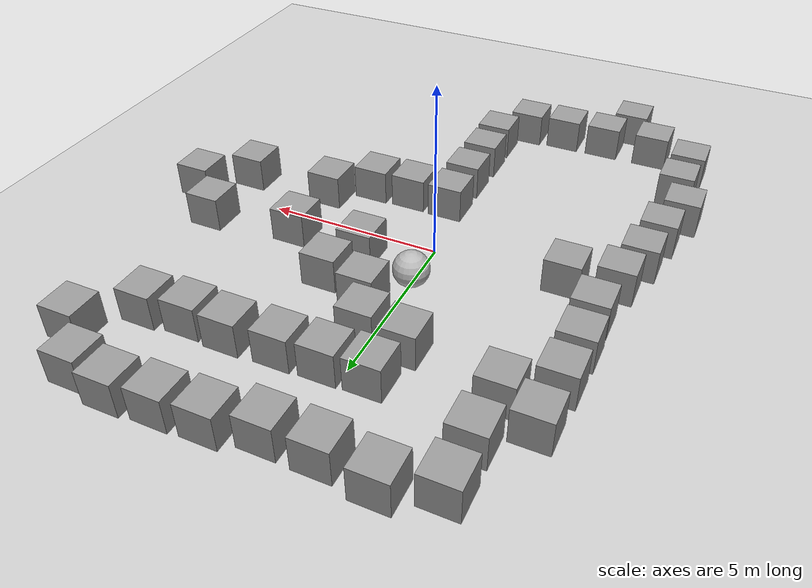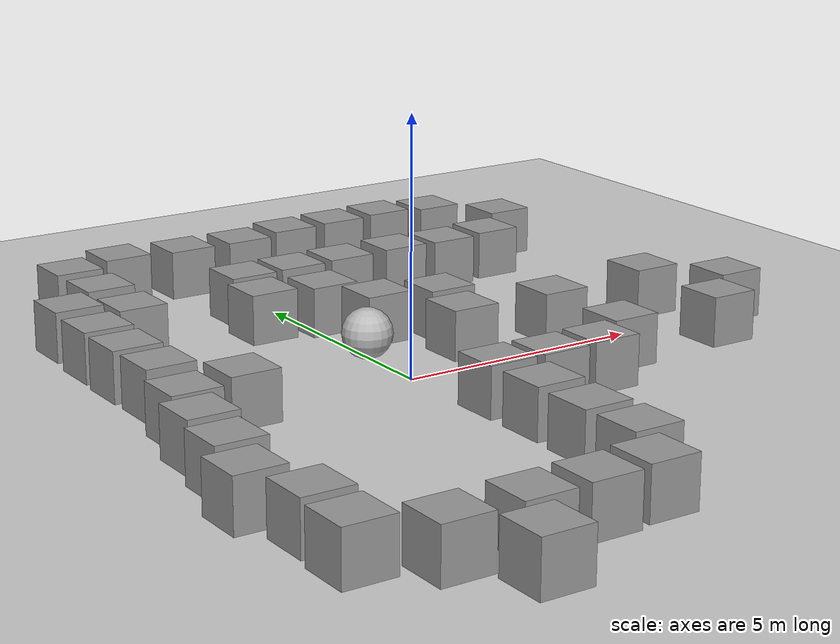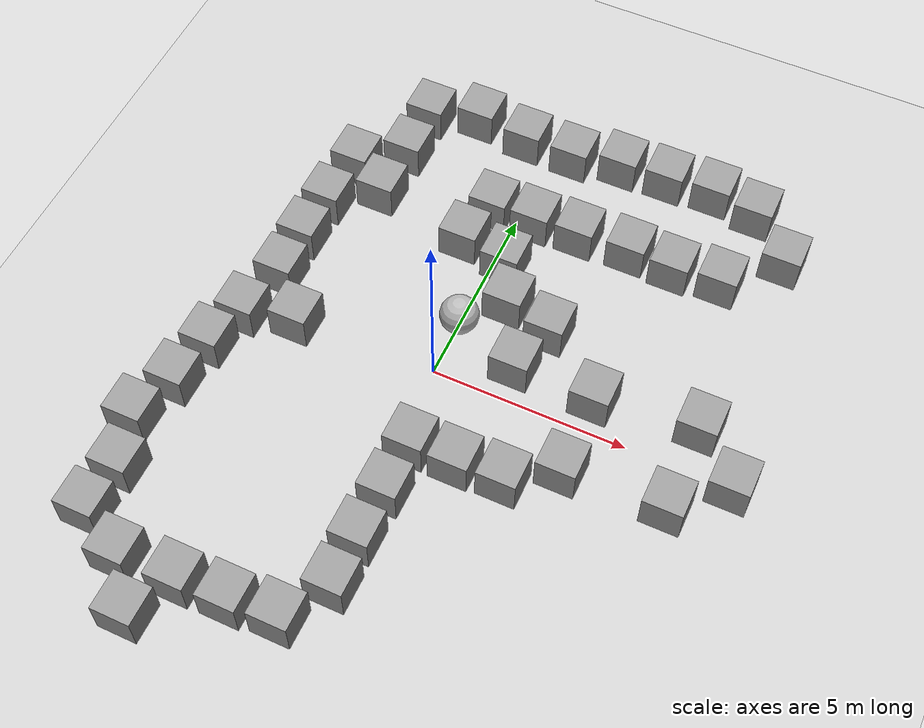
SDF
<sdf version="1.6">
 <world name="default">
  <light name="sun" type="directional">
   <pose>0 0 10 0 -0 0</pose>
   <diffuse>0.8 0.8 0.8 1</diffuse>
   <specular>0.1 0.1 0.1 1</specular>
   <attenuation>
    <range>1000</range>
    <constant>0.9</constant>
    <linear>0.01</linear>
    <quadratic>0.001</quadratic>
   </attenuation>
   <direction>-0.5 0.5 -1</direction>
  </light>
  <model name="ground_plane">
   <static>1</static>
   <link name="link">
    <collision name="collision">
     <geometry><plane><normal>0 0 1</normal><size>100 100</size></plane></geometry>
     <surface><friction><ode><mu>100</mu><mu2>50</mu2></ode></friction></surface>
    </collision>
    <visual name="visual">
     <cast_shadows>0</cast_shadows>
     <geometry><plane><normal>0 0 1</normal><size>100 100</size></plane></geometry>
     <material>
      <script><uri>file://media/materials/scripts/gazebo.material</uri><name>Gazebo/Grey</name></script>
     </material>
    </visual>
   </link>
  </model>
  <model name="sphere">
   <pose>0 1.5 0.5 0 -0 0</pose>
   <link name="link">
    <collision name="collision"><geometry><sphere><radius>0.5</radius></sphere></geometry></collision>
    <visual name="visual">
     <geometry><sphere><radius>0.5</radius></sphere></geometry>
     <material><script><uri>__default__</uri><name>__default__</name></script></material>
    </visual>
    <audio_source>
     <uri>file://media/audio/cheer.wav</uri>
     <pitch>2</pitch>
     <gain>1</gain>
     <loop>0</loop>
     <contact><collision>collision</collision></contact>
    </audio_source>
    <inertial>
     <inertia><ixx>1</ixx><ixy>0</ixy><ixz>0</ixz><iyy>1</iyy><iyz>0</iyz><izz>1</izz></inertia>
     <mass>1</mass>
    </inertial>
   </link>
  </model>
  <gravity>0 0 -9.8</gravity>
  <magnetic_field>6e-06 2.3e-05 -4.2e-05</magnetic_field>
  <atmosphere type="adiabatic"/>
  <physics name="default_physics" default="0" type="ode">
   <max_step_size>0.001</max_step_size>
   <real_time_factor>1</real_time_factor>
   <real_time_update_rate>1000</real_time_update_rate>
  </physics>
  <scene><ambient>0.4 0.4 0.4 1</ambient><background>0.7 0.7 0.7 1</background><shadows>1</shadows></scene>
  <spherical_coordinates>
   <surface_model>EARTH_WGS84</surface_model>
   <latitude_deg>0</latitude_deg>
   <longitude_deg>0</longitude_deg>
   <elevation>0</elevation>
   <heading_deg>0</heading_deg>
  </spherical_coordinates>
  <model name="unit_box_0">
   <pose>0.423218 -2.11076 0.499995 -1e-05 0 0</pose>
   <link name="link">
    <inertial>
     <mass>1</mass>
     <inertia>
      <ixx>0.166667</ixx>
      <ixy>0</ixy>
      <ixz>0</ixz>
      <iyy>0.166667</iyy>
      <iyz>0</iyz>
      <izz>0.166667</izz>
     </inertia>
    </inertial>
    <collision name="collision"><geometry><box><size>1 1 1</size></box></geometry></collision>
    <visual name="visual">
     <geometry><box><size>1 1 1</size></box></geometry>
     <material>
      <script><name>Gazebo/Grey</name><uri>file://media/materials/scripts/gazebo.material</uri></script>
     </material>
    </visual>
   </link>
  </model>
  <model name="unit_box_1">
   <pose>1.58403 -2.13008 0.499995 0 1e-05 0</pose>
   <link name="link">
    <inertial>
     <mass>1</mass>
     <inertia>
      <ixx>0.166667</ixx>
      <ixy>0</ixy>
      <ixz>0</ixz>
      <iyy>0.166667</iyy>
      <iyz>0</iyz>
      <izz>0.166667</izz>
     </inertia>
    </inertial>
    <collision name="collision"><geometry><box><size>1 1 1</size></box></geometry></collision>
    <visual name="visual">
     <geometry><box><size>1 1 1</size></box></geometry>
     <material>
      <script><name>Gazebo/Grey</name><uri>file://media/materials/scripts/gazebo.material</uri></script>
     </material>
    </visual>
   </link>
  </model>
  <model name="unit_box_2">
   <pose>2.77073 -2.0773 0.499995 -1e-05 0 0</pose>
   <link name="link">
    <inertial>
     <mass>1</mass>
     <inertia>
      <ixx>0.166667</ixx>
      <ixy>0</ixy>
      <ixz>0</ixz>
      <iyy>0.166667</iyy>
      <iyz>0</iyz>
      <izz>0.166667</izz>
     </inertia>
    </inertial>
    <collision name="collision"><geometry><box><size>1 1 1</size></box></geometry></collision>
    <visual name="visual">
     <geometry><box><size>1 1 1</size></box></geometry>
     <material>
      <script><name>Gazebo/Grey</name><uri>file://media/materials/scripts/gazebo.material</uri></script>
     </material>
    </visual>
   </link>
  </model>
  <model name="unit_box_3">
   <pose>3.89355 -1.26353 0.499995 0 1e-05 0</pose>
   <link name="link">
    <inertial>
     <mass>1</mass>
     <inertia>
      <ixx>0.166667</ixx>
      <ixy>0</ixy>
      <ixz>0</ixz>
      <iyy>0.166667</iyy>
      <iyz>0</iyz>
      <izz>0.166667</izz>
     </inertia>
    </inertial>
    <collision name="collision"><geometry><box><size>1 1 1</size></box></geometry></collision>
    <visual name="visual">
     <geometry><box><size>1 1 1</size></box></geometry>
     <material>
      <script><name>Gazebo/Grey</name><uri>file://media/materials/scripts/gazebo.material</uri></script>
     </material>
    </visual>
   </link>
  </model>
  <model name="unit_box_4">
   <pose>3.8597 0.814133 0.499995 -1e-05 0 0</pose>
   <link name="link">
    <inertial>
     <mass>1</mass>
     <inertia>
      <ixx>0.166667</ixx>
      <ixy>0</ixy>
      <ixz>0</ixz>
      <iyy>0.166667</iyy>
      <iyz>0</iyz>
      <izz>0.166667</izz>
     </inertia>
    </inertial>
    <collision name="collision"><geometry><box><size>1 1 1</size></box></geometry></collision>
    <visual name="visual">
     <geometry><box><size>1 1 1</size></box></geometry>
     <material>
      <script><name>Gazebo/Grey</name><uri>file://media/materials/scripts/gazebo.material</uri></script>
     </material>
    </visual>
   </link>
  </model>
  <model name="unit_box_5">
   <pose>1.76174 0.888922 0.499995 0 1e-05 0</pose>
   <link name="link">
    <inertial>
     <mass>1</mass>
     <inertia>
      <ixx>0.166667</ixx>
      <ixy>0</ixy>
      <ixz>0</ixz>
      <iyy>0.166667</iyy>
      <iyz>0</iyz>
      <izz>0.166667</izz>
     </inertia>
    </inertial>
    <collision name="collision"><geometry><box><size>1 1 1</size></box></geometry></collision>
    <visual name="visual">
     <geometry><box><size>1 1 1</size></box></geometry>
     <material>
      <script><name>Gazebo/Grey</name><uri>file://media/materials/scripts/gazebo.material</uri></script>
     </material>
    </visual>
   </link>
  </model>
  <model name="unit_box_6">
   <pose>0.872848 2.51326 0.499995 -1e-05 0 0</pose>
   <link name="link">
    <inertial>
     <mass>1</mass>
     <inertia>
      <ixx>0.166667</ixx>
      <ixy>0</ixy>
      <ixz>0</ixz>
      <iyy>0.166667</iyy>
      <iyz>0</iyz>
      <izz>0.166667</izz>
     </inertia>
    </inertial>
    <collision name="collision"><geometry><box><size>1 1 1</size></box></geometry></collision>
    <visual name="visual">
     <geometry><box><size>1 1 1</size></box></geometry>
     <material>
      <script><name>Gazebo/Grey</name><uri>file://media/materials/scripts/gazebo.material</uri></script>
     </material>
    </visual>
   </link>
  </model>
  <model name="unit_box_7">
   <pose>2.11942 2.17671 0.499995 0 1e-05 0</pose>
   <link name="link">
    <inertial>
     <mass>1</mass>
     <inertia>
      <ixx>0.166667</ixx>
      <ixy>0</ixy>
      <ixz>0</ixz>
      <iyy>0.166667</iyy>
      <iyz>0</iyz>
      <izz>0.166667</izz>
     </inertia>
    </inertial>
    <collision name="collision"><geometry><box><size>1 1 1</size></box></geometry></collision>
    <visual name="visual">
     <geometry><box><size>1 1 1</size></box></geometry>
     <material>
      <script><name>Gazebo/Grey</name><uri>file://media/materials/scripts/gazebo.material</uri></script>
     </material>
    </visual>
   </link>
  </model>
  <model name="unit_box_8">
   <pose>0.429041 -3.44681 0.499995 -1e-05 0 0</pose>
   <link name="link">
    <inertial>
     <mass>1</mass>
     <inertia>
      <ixx>0.166667</ixx>
      <ixy>0</ixy>
      <ixz>0</ixz>
      <iyy>0.166667</iyy>
      <iyz>0</iyz>
      <izz>0.166667</izz>
     </inertia>
    </inertial>
    <collision name="collision"><geometry><box><size>1 1 1</size></box></geometry></collision>
    <visual name="visual">
     <geometry><box><size>1 1 1</size></box></geometry>
     <material>
      <script><name>Gazebo/Grey</name><uri>file://media/materials/scripts/gazebo.material</uri></script>
     </material>
    </visual>
   </link>
  </model>
  <model name="unit_box_9">
   <pose>0.392445 -4.77441 0.499995 0 1e-05 0</pose>
   <link name="link">
    <inertial>
     <mass>1</mass>
     <inertia>
      <ixx>0.166667</ixx>
      <ixy>0</ixy>
      <ixz>0</ixz>
      <iyy>0.166667</iyy>
      <iyz>0</iyz>
      <izz>0.166667</izz>
     </inertia>
    </inertial>
    <collision name="collision"><geometry><box><size>1 1 1</size></box></geometry></collision>
    <visual name="visual">
     <geometry><box><size>1 1 1</size></box></geometry>
     <material>
      <script><name>Gazebo/Grey</name><uri>file://media/materials/scripts/gazebo.material</uri></script>
     </material>
    </visual>
   </link>
  </model>
  <model name="unit_box_10">
   <pose>0.411326 -6.03282 0.499995 -1e-05 0 0</pose>
   <link name="link">
    <inertial>
     <mass>1</mass>
     <inertia>
      <ixx>0.166667</ixx>
      <ixy>0</ixy>
      <ixz>0</ixz>
      <iyy>0.166667</iyy>
      <iyz>0</iyz>
      <izz>0.166667</izz>
     </inertia>
    </inertial>
    <collision name="collision"><geometry><box><size>1 1 1</size></box></geometry></collision>
    <visual name="visual">
     <geometry><box><size>1 1 1</size></box></geometry>
     <material>
      <script><name>Gazebo/Grey</name><uri>file://media/materials/scripts/gazebo.material</uri></script>
     </material>
    </visual>
   </link>
  </model>
  <model name="unit_box_11">
   <pose>-0.287675 -7.24185 0.499995 0 1e-05 0</pose>
   <link name="link">
    <inertial>
     <mass>1</mass>
     <inertia>
      <ixx>0.166667</ixx>
      <ixy>0</ixy>
      <ixz>0</ixz>
      <iyy>0.166667</iyy>
      <iyz>0</iyz>
      <izz>0.166667</izz>
     </inertia>
    </inertial>
    <collision name="collision"><geometry><box><size>1 1 1</size></box></geometry></collision>
    <visual name="visual">
     <geometry><box><size>1 1 1</size></box></geometry>
     <material>
      <script><name>Gazebo/Grey</name><uri>file://media/materials/scripts/gazebo.material</uri></script>
     </material>
    </visual>
   </link>
  </model>
  <model name="unit_box_12">
   <pose>-1.50584 -7.33763 0.499995 -1e-05 0 0</pose>
   <link name="link">
    <inertial>
     <mass>1</mass>
     <inertia>
      <ixx>0.166667</ixx>
      <ixy>0</ixy>
      <ixz>0</ixz>
      <iyy>0.166667</iyy>
      <iyz>0</iyz>
      <izz>0.166667</izz>
     </inertia>
    </inertial>
    <collision name="collision"><geometry><box><size>1 1 1</size></box></geometry></collision>
    <visual name="visual">
     <geometry><box><size>1 1 1</size></box></geometry>
     <material>
      <script><name>Gazebo/Grey</name><uri>file://media/materials/scripts/gazebo.material</uri></script>
     </material>
    </visual>
   </link>
  </model>
  <model name="unit_box_13">
   <pose>-2.78147 -7.37543 0.499995 0 1e-05 0</pose>
   <link name="link">
    <inertial>
     <mass>1</mass>
     <inertia>
      <ixx>0.166667</ixx>
      <ixy>0</ixy>
      <ixz>0</ixz>
      <iyy>0.166667</iyy>
      <iyz>0</iyz>
      <izz>0.166667</izz>
     </inertia>
    </inertial>
    <collision name="collision"><geometry><box><size>1 1 1</size></box></geometry></collision>
    <visual name="visual">
     <geometry><box><size>1 1 1</size></box></geometry>
     <material>
      <script><name>Gazebo/Grey</name><uri>file://media/materials/scripts/gazebo.material</uri></script>
     </material>
    </visual>
   </link>
  </model>
  <model name="unit_box_14">
   <pose>-4.29115 -7.40759 0.499995 -1e-05 0 0</pose>
   <link name="link">
    <inertial>
     <mass>1</mass>
     <inertia>
      <ixx>0.166667</ixx>
      <ixy>0</ixy>
      <ixz>0</ixz>
      <iyy>0.166667</iyy>
      <iyz>0</iyz>
      <izz>0.166667</izz>
     </inertia>
    </inertial>
    <collision name="collision"><geometry><box><size>1 1 1</size></box></geometry></collision>
    <visual name="visual">
     <geometry><box><size>1 1 1</size></box></geometry>
     <material>
      <script><name>Gazebo/Grey</name><uri>file://media/materials/scripts/gazebo.material</uri></script>
     </material>
    </visual>
   </link>
  </model>
  <model name="unit_box_15">
   <pose>-5.52346 -6.71404 0.499995 0 1e-05 0</pose>
   <link name="link">
    <inertial>
     <mass>1</mass>
     <inertia>
      <ixx>0.166667</ixx>
      <ixy>0</ixy>
      <ixz>0</ixz>
      <iyy>0.166667</iyy>
      <iyz>0</iyz>
      <izz>0.166667</izz>
     </inertia>
    </inertial>
    <collision name="collision"><geometry><box><size>1 1 1</size></box></geometry></collision>
    <visual name="visual">
     <geometry><box><size>1 1 1</size></box></geometry>
     <material>
      <script><name>Gazebo/Grey</name><uri>file://media/materials/scripts/gazebo.material</uri></script>
     </material>
    </visual>
   </link>
  </model>
  <model name="unit_box_16">
   <pose>-3.37503 -8.54566 0.499995 -1e-05 0 0</pose>
   <link name="link">
    <inertial>
     <mass>1</mass>
     <inertia>
      <ixx>0.166667</ixx>
      <ixy>0</ixy>
      <ixz>0</ixz>
      <iyy>0.166667</iyy>
      <iyz>0</iyz>
      <izz>0.166667</izz>
     </inertia>
    </inertial>
    <collision name="collision"><geometry><box><size>1 1 1</size></box></geometry></collision>
    <visual name="visual">
     <geometry><box><size>1 1 1</size></box></geometry>
     <material>
      <script><name>Gazebo/Grey</name><uri>file://media/materials/scripts/gazebo.material</uri></script>
     </material>
    </visual>
   </link>
  </model>
  <model name="unit_box_17">
   <pose>-5.44008 -5.45541 0.499995 0 1e-05 0</pose>
   <link name="link">
    <inertial>
     <mass>1</mass>
     <inertia>
      <ixx>0.166667</ixx>
      <ixy>0</ixy>
      <ixz>0</ixz>
      <iyy>0.166667</iyy>
      <iyz>0</iyz>
      <izz>0.166667</izz>
     </inertia>
    </inertial>
    <collision name="collision"><geometry><box><size>1 1 1</size></box></geometry></collision>
    <visual name="visual">
     <geometry><box><size>1 1 1</size></box></geometry>
     <material>
      <script><name>Gazebo/Grey</name><uri>file://media/materials/scripts/gazebo.material</uri></script>
     </material>
    </visual>
   </link>
  </model>
  <model name="unit_box_18">
   <pose>-5.8446 -4.15547 0.499995 -1e-05 0 0</pose>
   <link name="link">
    <inertial>
     <mass>1</mass>
     <inertia>
      <ixx>0.166667</ixx>
      <ixy>0</ixy>
      <ixz>0</ixz>
      <iyy>0.166667</iyy>
      <iyz>0</iyz>
      <izz>0.166667</izz>
     </inertia>
    </inertial>
    <collision name="collision"><geometry><box><size>1 1 1</size></box></geometry></collision>
    <visual name="visual">
     <geometry><box><size>1 1 1</size></box></geometry>
     <material>
      <script><name>Gazebo/Grey</name><uri>file://media/materials/scripts/gazebo.material</uri></script>
     </material>
    </visual>
   </link>
  </model>
  <model name="unit_box_19">
   <pose>-5.47058 -2.9045 0.499995 0 1e-05 0</pose>
   <link name="link">
    <inertial>
     <mass>1</mass>
     <inertia>
      <ixx>0.166667</ixx>
      <ixy>0</ixy>
      <ixz>0</ixz>
      <iyy>0.166667</iyy>
      <iyz>0</iyz>
      <izz>0.166667</izz>
     </inertia>
    </inertial>
    <collision name="collision"><geometry><box><size>1 1 1</size></box></geometry></collision>
    <visual name="visual">
     <geometry><box><size>1 1 1</size></box></geometry>
     <material>
      <script><name>Gazebo/Grey</name><uri>file://media/materials/scripts/gazebo.material</uri></script>
     </material>
    </visual>
   </link>
  </model>
  <model name="unit_box_20">
   <pose>-5.26826 -1.62834 0.499995 -1e-05 0 0</pose>
   <link name="link">
    <inertial>
     <mass>1</mass>
     <inertia>
      <ixx>0.166667</ixx>
      <ixy>0</ixy>
      <ixz>0</ixz>
      <iyy>0.166667</iyy>
      <iyz>0</iyz>
      <izz>0.166667</izz>
     </inertia>
    </inertial>
    <collision name="collision"><geometry><box><size>1 1 1</size></box></geometry></collision>
    <visual name="visual">
     <geometry><box><size>1 1 1</size></box></geometry>
     <material>
      <script><name>Gazebo/Grey</name><uri>file://media/materials/scripts/gazebo.material</uri></script>
     </material>
    </visual>
   </link>
  </model>
  <model name="unit_box_21">
   <pose>-4.94876 -0.47285 0.499995 0 1e-05 0</pose>
   <link name="link">
    <inertial>
     <mass>1</mass>
     <inertia>
      <ixx>0.166667</ixx>
      <ixy>0</ixy>
      <ixz>0</ixz>
      <iyy>0.166667</iyy>
      <iyz>0</iyz>
      <izz>0.166667</izz>
     </inertia>
    </inertial>
    <collision name="collision"><geometry><box><size>1 1 1</size></box></geometry></collision>
    <visual name="visual">
     <geometry><box><size>1 1 1</size></box></geometry>
     <material>
      <script><name>Gazebo/Grey</name><uri>file://media/materials/scripts/gazebo.material</uri></script>
     </material>
    </visual>
   </link>
  </model>
  <model name="unit_box_22">
   <pose>-4.67844 0.993727 0.499995 -1e-05 0 0</pose>
   <link name="link">
    <inertial>
     <mass>1</mass>
     <inertia>
      <ixx>0.166667</ixx>
      <ixy>0</ixy>
      <ixz>0</ixz>
      <iyy>0.166667</iyy>
      <iyz>0</iyz>
      <izz>0.166667</izz>
     </inertia>
    </inertial>
    <collision name="collision"><geometry><box><size>1 1 1</size></box></geometry></collision>
    <visual name="visual">
     <geometry><box><size>1 1 1</size></box></geometry>
     <material>
      <script><name>Gazebo/Grey</name><uri>file://media/materials/scripts/gazebo.material</uri></script>
     </material>
    </visual>
   </link>
  </model>
  <model name="unit_box_23">
   <pose>-3.64084 -0.160311 0.499995 0 1e-05 0</pose>
   <link name="link">
    <inertial>
     <mass>1</mass>
     <inertia>
      <ixx>0.166667</ixx>
      <ixy>0</ixy>
      <ixz>0</ixz>
      <iyy>0.166667</iyy>
      <iyz>0</iyz>
      <izz>0.166667</izz>
     </inertia>
    </inertial>
    <collision name="collision"><geometry><box><size>1 1 1</size></box></geometry></collision>
    <visual name="visual">
     <geometry><box><size>1 1 1</size></box></geometry>
     <material>
      <script><name>Gazebo/Grey</name><uri>file://media/materials/scripts/gazebo.material</uri></script>
     </material>
    </visual>
   </link>
  </model>
  <model name="unit_box_24">
   <pose>-4.70097 2.24169 0.499995 -1e-05 0 0</pose>
   <link name="link">
    <inertial>
     <mass>1</mass>
     <inertia>
      <ixx>0.166667</ixx>
      <ixy>0</ixy>
      <ixz>0</ixz>
      <iyy>0.166667</iyy>
      <iyz>0</iyz>
      <izz>0.166667</izz>
     </inertia>
    </inertial>
    <collision name="collision"><geometry><box><size>1 1 1</size></box></geometry></collision>
    <visual name="visual">
     <geometry><box><size>1 1 1</size></box></geometry>
     <material>
      <script><name>Gazebo/Grey</name><uri>file://media/materials/scripts/gazebo.material</uri></script>
     </material>
    </visual>
   </link>
  </model>
  <model name="unit_box_25">
   <pose>-4.65707 3.49912 0.499995 0 1e-05 0</pose>
   <link name="link">
    <inertial>
     <mass>1</mass>
     <inertia>
      <ixx>0.166667</ixx>
      <ixy>0</ixy>
      <ixz>0</ixz>
      <iyy>0.166667</iyy>
      <iyz>0</iyz>
      <izz>0.166667</izz>
     </inertia>
    </inertial>
    <collision name="collision"><geometry><box><size>1 1 1</size></box></geometry></collision>
    <visual name="visual">
     <geometry><box><size>1 1 1</size></box></geometry>
     <material>
      <script><name>Gazebo/Grey</name><uri>file://media/materials/scripts/gazebo.material</uri></script>
     </material>
    </visual>
   </link>
  </model>
  <model name="unit_box_26">
   <pose>-4.56874 4.939 0.499995 -1e-05 0 0</pose>
   <link name="link">
    <inertial>
     <mass>1</mass>
     <inertia>
      <ixx>0.166667</ixx>
      <ixy>0</ixy>
      <ixz>0</ixz>
      <iyy>0.166667</iyy>
      <iyz>0</iyz>
      <izz>0.166667</izz>
     </inertia>
    </inertial>
    <collision name="collision"><geometry><box><size>1 1 1</size></box></geometry></collision>
    <visual name="visual">
     <geometry><box><size>1 1 1</size></box></geometry>
     <material>
      <script><name>Gazebo/Grey</name><uri>file://media/materials/scripts/gazebo.material</uri></script>
     </material>
    </visual>
   </link>
  </model>
  <model name="unit_box_27">
   <pose>0.303105 3.62572 0.499995 0 1e-05 0</pose>
   <link name="link">
    <inertial>
     <mass>1</mass>
     <inertia>
      <ixx>0.166667</ixx>
      <ixy>0</ixy>
      <ixz>0</ixz>
      <iyy>0.166667</iyy>
      <iyz>0</iyz>
      <izz>0.166667</izz>
     </inertia>
    </inertial>
    <collision name="collision"><geometry><box><size>1 1 1</size></box></geometry></collision>
    <visual name="visual">
     <geometry><box><size>1 1 1</size></box></geometry>
     <material>
      <script><name>Gazebo/Grey</name><uri>file://media/materials/scripts/gazebo.material</uri></script>
     </material>
    </visual>
   </link>
  </model>
  <model name="unit_box_28">
   <pose>-0.678112 5.08371 0.499995 -1e-05 0 0</pose>
   <link name="link">
    <inertial>
     <mass>1</mass>
     <inertia>
      <ixx>0.166667</ixx>
      <ixy>0</ixy>
      <ixz>0</ixz>
      <iyy>0.166667</iyy>
      <iyz>0</iyz>
      <izz>0.166667</izz>
     </inertia>
    </inertial>
    <collision name="collision"><geometry><box><size>1 1 1</size></box></geometry></collision>
    <visual name="visual">
     <geometry><box><size>1 1 1</size></box></geometry>
     <material>
      <script><name>Gazebo/Grey</name><uri>file://media/materials/scripts/gazebo.material</uri></script>
     </material>
    </visual>
   </link>
  </model>
  <model name="unit_box_29">
   <pose>-0.937056 3.84797 0.499995 0 1e-05 0</pose>
   <link name="link">
    <inertial>
     <mass>1</mass>
     <inertia>
      <ixx>0.166667</ixx>
      <ixy>0</ixy>
      <ixz>0</ixz>
      <iyy>0.166667</iyy>
      <iyz>0</iyz>
      <izz>0.166667</izz>
     </inertia>
    </inertial>
    <collision name="collision"><geometry><box><size>1 1 1</size></box></geometry></collision>
    <visual name="visual">
     <geometry><box><size>1 1 1</size></box></geometry>
     <material>
      <script><name>Gazebo/Grey</name><uri>file://media/materials/scripts/gazebo.material</uri></script>
     </material>
    </visual>
   </link>
  </model>
  <model name="unit_box_30">
   <pose>-3.52272 4.34675 0.499995 -1e-05 0 0</pose>
   <link name="link">
    <inertial>
     <mass>1</mass>
     <inertia>
      <ixx>0.166667</ixx>
      <ixy>0</ixy>
      <ixz>0</ixz>
      <iyy>0.166667</iyy>
      <iyz>0</iyz>
      <izz>0.166667</izz>
     </inertia>
    </inertial>
    <collision name="collision"><geometry><box><size>1 1 1</size></box></geometry></collision>
    <visual name="visual">
     <geometry><box><size>1 1 1</size></box></geometry>
     <material>
      <script><name>Gazebo/Grey</name><uri>file://media/materials/scripts/gazebo.material</uri></script>
     </material>
    </visual>
   </link>
  </model>
  <model name="unit_box_31">
   <pose>-3.46965 5.83997 0.499995 0 1e-05 0</pose>
   <link name="link">
    <inertial>
     <mass>1</mass>
     <inertia>
      <ixx>0.166667</ixx>
      <ixy>0</ixy>
      <ixz>0</ixz>
      <iyy>0.166667</iyy>
      <iyz>0</iyz>
      <izz>0.166667</izz>
     </inertia>
    </inertial>
    <collision name="collision"><geometry><box><size>1 1 1</size></box></geometry></collision>
    <visual name="visual">
     <geometry><box><size>1 1 1</size></box></geometry>
     <material>
      <script><name>Gazebo/Grey</name><uri>file://media/materials/scripts/gazebo.material</uri></script>
     </material>
    </visual>
   </link>
  </model>
  <model name="unit_box_32">
   <pose>-3.477 7.23266 0.499995 -1e-05 0 0</pose>
   <link name="link">
    <inertial>
     <mass>1</mass>
     <inertia>
      <ixx>0.166667</ixx>
      <ixy>0</ixy>
      <ixz>0</ixz>
      <iyy>0.166667</iyy>
      <iyz>0</iyz>
      <izz>0.166667</izz>
     </inertia>
    </inertial>
    <collision name="collision"><geometry><box><size>1 1 1</size></box></geometry></collision>
    <visual name="visual">
     <geometry><box><size>1 1 1</size></box></geometry>
     <material>
      <script><name>Gazebo/Grey</name><uri>file://media/materials/scripts/gazebo.material</uri></script>
     </material>
    </visual>
   </link>
  </model>
  <model name="unit_box_33">
   <pose>-2.1864 7.67286 0.499995 0 1e-05 0</pose>
   <link name="link">
    <inertial>
     <mass>1</mass>
     <inertia>
      <ixx>0.166667</ixx>
      <ixy>0</ixy>
      <ixz>0</ixz>
      <iyy>0.166667</iyy>
      <iyz>0</iyz>
      <izz>0.166667</izz>
     </inertia>
    </inertial>
    <collision name="collision"><geometry><box><size>1 1 1</size></box></geometry></collision>
    <visual name="visual">
     <geometry><box><size>1 1 1</size></box></geometry>
     <material>
      <script><name>Gazebo/Grey</name><uri>file://media/materials/scripts/gazebo.material</uri></script>
     </material>
    </visual>
   </link>
  </model>
  <model name="unit_box_34">
   <pose>-0.77514 7.50352 0.499995 -1e-05 0 0</pose>
   <link name="link">
    <inertial>
     <mass>1</mass>
     <inertia>
      <ixx>0.166667</ixx>
      <ixy>0</ixy>
      <ixz>0</ixz>
      <iyy>0.166667</iyy>
      <iyz>0</iyz>
      <izz>0.166667</izz>
     </inertia>
    </inertial>
    <collision name="collision"><geometry><box><size>1 1 1</size></box></geometry></collision>
    <visual name="visual">
     <geometry><box><size>1 1 1</size></box></geometry>
     <material>
      <script><name>Gazebo/Grey</name><uri>file://media/materials/scripts/gazebo.material</uri></script>
     </material>
    </visual>
   </link>
  </model>
  <model name="unit_box_35">
   <pose>0.471589 5.11999 0.499995 0 1e-05 0</pose>
   <link name="link">
    <inertial>
     <mass>1</mass>
     <inertia>
      <ixx>0.166667</ixx>
      <ixy>0</ixy>
      <ixz>0</ixz>
      <iyy>0.166667</iyy>
      <iyz>0</iyz>
      <izz>0.166667</izz>
     </inertia>
    </inertial>
    <collision name="collision"><geometry><box><size>1 1 1</size></box></geometry></collision>
    <visual name="visual">
     <geometry><box><size>1 1 1</size></box></geometry>
     <material>
      <script><name>Gazebo/Grey</name><uri>file://media/materials/scripts/gazebo.material</uri></script>
     </material>
    </visual>
   </link>
  </model>
  <model name="unit_box_36">
   <pose>1.67009 5.16791 0.499995 -1e-05 0 0</pose>
   <link name="link">
    <inertial>
     <mass>1</mass>
     <inertia>
      <ixx>0.166667</ixx>
      <ixy>0</ixy>
      <ixz>0</ixz>
      <iyy>0.166667</iyy>
      <iyz>0</iyz>
      <izz>0.166667</izz>
     </inertia>
    </inertial>
    <collision name="collision"><geometry><box><size>1 1 1</size></box></geometry></collision>
    <visual name="visual">
     <geometry><box><size>1 1 1</size></box></geometry>
     <material>
      <script><name>Gazebo/Grey</name><uri>file://media/materials/scripts/gazebo.material</uri></script>
     </material>
    </visual>
   </link>
  </model>
  <model name="unit_box_37">
   <pose>3.04101 5.23144 0.499995 0 1e-05 0</pose>
   <link name="link">
    <inertial>
     <mass>1</mass>
     <inertia>
      <ixx>0.166667</ixx>
      <ixy>0</ixy>
      <ixz>0</ixz>
      <iyy>0.166667</iyy>
      <iyz>0</iyz>
      <izz>0.166667</izz>
     </inertia>
    </inertial>
    <collision name="collision"><geometry><box><size>1 1 1</size></box></geometry></collision>
    <visual name="visual">
     <geometry><box><size>1 1 1</size></box></geometry>
     <material>
      <script><name>Gazebo/Grey</name><uri>file://media/materials/scripts/gazebo.material</uri></script>
     </material>
    </visual>
   </link>
  </model>
  <model name="unit_box_38">
   <pose>4.22188 5.16401 0.499995 -1e-05 0 0</pose>
   <link name="link">
    <inertial>
     <mass>1</mass>
     <inertia>
      <ixx>0.166667</ixx>
      <ixy>0</ixy>
      <ixz>0</ixz>
      <iyy>0.166667</iyy>
      <iyz>0</iyz>
      <izz>0.166667</izz>
     </inertia>
    </inertial>
    <collision name="collision"><geometry><box><size>1 1 1</size></box></geometry></collision>
    <visual name="visual">
     <geometry><box><size>1 1 1</size></box></geometry>
     <material>
      <script><name>Gazebo/Grey</name><uri>file://media/materials/scripts/gazebo.material</uri></script>
     </material>
    </visual>
   </link>
  </model>
  <model name="unit_box_39">
   <pose>0.572491 7.4829 0.499995 0 1e-05 0</pose>
   <link name="link">
    <inertial>
     <mass>1</mass>
     <inertia>
      <ixx>0.166667</ixx>
      <ixy>0</ixy>
      <ixz>0</ixz>
      <iyy>0.166667</iyy>
      <iyz>0</iyz>
      <izz>0.166667</izz>
     </inertia>
    </inertial>
    <collision name="collision"><geometry><box><size>1 1 1</size></box></geometry></collision>
    <visual name="visual">
     <geometry><box><size>1 1 1</size></box></geometry>
     <material>
      <script><name>Gazebo/Grey</name><uri>file://media/materials/scripts/gazebo.material</uri></script>
     </material>
    </visual>
   </link>
  </model>
  <model name="unit_box_40">
   <pose>1.84705 7.74214 0.499995 -1e-05 0 0</pose>
   <link name="link">
    <inertial>
     <mass>1</mass>
     <inertia>
      <ixx>0.166667</ixx>
      <ixy>0</ixy>
      <ixz>0</ixz>
      <iyy>0.166667</iyy>
      <iyz>0</iyz>
      <izz>0.166667</izz>
     </inertia>
    </inertial>
    <collision name="collision"><geometry><box><size>1 1 1</size></box></geometry></collision>
    <visual name="visual">
     <geometry><box><size>1 1 1</size></box></geometry>
     <material>
      <script><name>Gazebo/Grey</name><uri>file://media/materials/scripts/gazebo.material</uri></script>
     </material>
    </visual>
   </link>
  </model>
  <model name="unit_box_41">
   <pose>3.10107 7.79968 0.499995 0 1e-05 0</pose>
   <link name="link">
    <inertial>
     <mass>1</mass>
     <inertia>
      <ixx>0.166667</ixx>
      <ixy>0</ixy>
      <ixz>0</ixz>
      <iyy>0.166667</iyy>
      <iyz>0</iyz>
      <izz>0.166667</izz>
     </inertia>
    </inertial>
    <collision name="collision"><geometry><box><size>1 1 1</size></box></geometry></collision>
    <visual name="visual">
     <geometry><box><size>1 1 1</size></box></geometry>
     <material>
      <script><name>Gazebo/Grey</name><uri>file://media/materials/scripts/gazebo.material</uri></script>
     </material>
    </visual>
   </link>
  </model>
  <model name="unit_box_42">
   <pose>4.35375 7.88442 0.499995 1e-05 -0 0</pose>
   <link name="link">
    <inertial>
     <mass>1</mass>
     <inertia>
      <ixx>0.166667</ixx>
      <ixy>0</ixy>
      <ixz>0</ixz>
      <iyy>0.166667</iyy>
      <iyz>0</iyz>
      <izz>0.166667</izz>
     </inertia>
    </inertial>
    <collision name="collision"><geometry><box><size>1 1 1</size></box></geometry></collision>
    <visual name="visual">
     <geometry><box><size>1 1 1</size></box></geometry>
     <material>
      <script><name>Gazebo/Grey</name><uri>file://media/materials/scripts/gazebo.material</uri></script>
     </material>
    </visual>
   </link>
  </model>
  <model name="unit_box_43">
   <pose>5.55546 7.67366 0.499995 -1e-05 0 0</pose>
   <link name="link">
    <inertial>
     <mass>1</mass>
     <inertia>
      <ixx>0.166667</ixx>
      <ixy>0</ixy>
      <ixz>0</ixz>
      <iyy>0.166667</iyy>
      <iyz>0</iyz>
      <izz>0.166667</izz>
     </inertia>
    </inertial>
    <collision name="collision"><geometry><box><size>1 1 1</size></box></geometry></collision>
    <visual name="visual">
     <geometry><box><size>1 1 1</size></box></geometry>
     <material>
      <script><name>Gazebo/Grey</name><uri>file://media/materials/scripts/gazebo.material</uri></script>
     </material>
    </visual>
   </link>
  </model>
  <model name="unit_box_44">
   <pose>5.44928 5.28049 0.499995 0 1e-05 0</pose>
   <link name="link">
    <inertial>
     <mass>1</mass>
     <inertia>
      <ixx>0.166667</ixx>
      <ixy>0</ixy>
      <ixz>0</ixz>
      <iyy>0.166667</iyy>
      <iyz>0</iyz>
      <izz>0.166667</izz>
     </inertia>
    </inertial>
    <collision name="collision"><geometry><box><size>1 1 1</size></box></geometry></collision>
    <visual name="visual">
     <geometry><box><size>1 1 1</size></box></geometry>
     <material>
      <script><name>Gazebo/Grey</name><uri>file://media/materials/scripts/gazebo.material</uri></script>
     </material>
    </visual>
   </link>
  </model>
  <model name="unit_box_45">
   <pose>6.68284 6.52438 0.499995 -1e-05 0 0</pose>
   <link name="link">
    <inertial>
     <mass>1</mass>
     <inertia>
      <ixx>0.166667</ixx>
      <ixy>0</ixy>
      <ixz>0</ixz>
      <iyy>0.166667</iyy>
      <iyz>0</iyz>
      <izz>0.166667</izz>
     </inertia>
    </inertial>
    <collision name="collision"><geometry><box><size>1 1 1</size></box></geometry></collision>
    <visual name="visual">
     <geometry><box><size>1 1 1</size></box></geometry>
     <material>
      <script><name>Gazebo/Grey</name><uri>file://media/materials/scripts/gazebo.material</uri></script>
     </material>
    </visual>
   </link>
  </model>
  <model name="unit_box_46">
   <pose>6.44226 -1.14961 0.499995 0 1e-05 0</pose>
   <link name="link">
    <inertial>
     <mass>1</mass>
     <inertia>
      <ixx>0.166667</ixx>
      <ixy>0</ixy>
      <ixz>0</ixz>
      <iyy>0.166667</iyy>
      <iyz>0</iyz>
      <izz>0.166667</izz>
     </inertia>
    </inertial>
    <collision name="collision"><geometry><box><size>1 1 1</size></box></geometry></collision>
    <visual name="visual">
     <geometry><box><size>1 1 1</size></box></geometry>
     <material>
      <script><name>Gazebo/Grey</name><uri>file://media/materials/scripts/gazebo.material</uri></script>
     </material>
    </visual>
   </link>
  </model>
  <model name="unit_box_47">
   <pose>6.42811 1.13146 0.499995 -1e-05 0 0</pose>
   <link name="link">
    <inertial>
     <mass>1</mass>
     <inertia>
      <ixx>0.166667</ixx>
      <ixy>0</ixy>
      <ixz>0</ixz>
      <iyy>0.166667</iyy>
      <iyz>0</iyz>
      <izz>0.166667</izz>
     </inertia>
    </inertial>
    <collision name="collision"><geometry><box><size>1 1 1</size></box></geometry></collision>
    <visual name="visual">
     <geometry><box><size>1 1 1</size></box></geometry>
     <material>
      <script><name>Gazebo/Grey</name><uri>file://media/materials/scripts/gazebo.material</uri></script>
     </material>
    </visual>
   </link>
  </model>
  <model name="unit_box_48">
   <pose>7.62503 -0.040234 0.5 0 -0 0</pose>
   <link name="link">
    <inertial>
     <mass>1</mass>
     <inertia>
      <ixx>0.166667</ixx>
      <ixy>0</ixy>
      <ixz>0</ixz>
      <iyy>0.166667</iyy>
      <iyz>0</iyz>
      <izz>0.166667</izz>
     </inertia>
    </inertial>
    <collision name="collision"><geometry><box><size>1 1 1</size></box></geometry></collision>
    <visual name="visual">
     <geometry><box><size>1 1 1</size></box></geometry>
     <material>
      <script><name>Gazebo/Grey</name><uri>file://media/materials/scripts/gazebo.material</uri></script>
     </material>
    </visual>
   </link>
  </model>
 </world>
</sdf>
